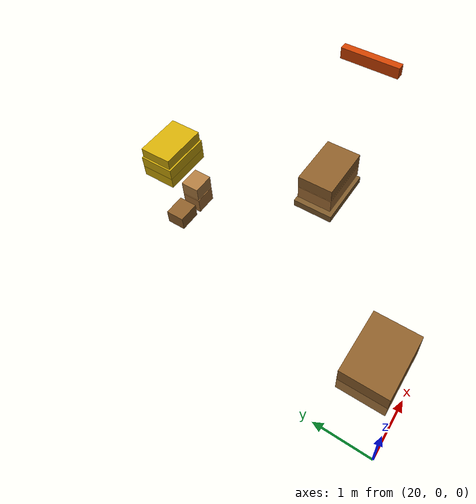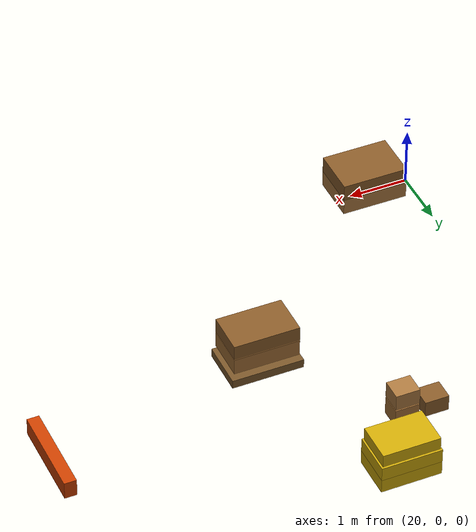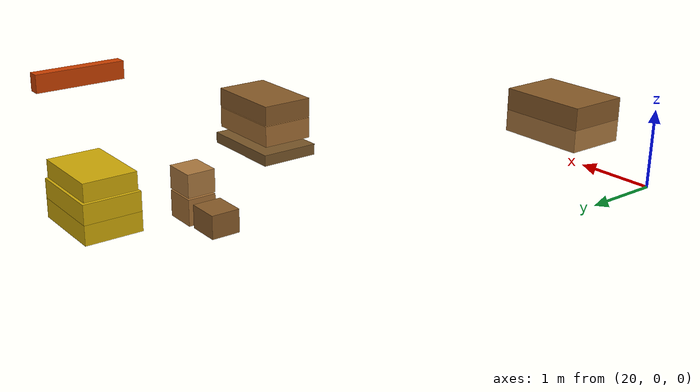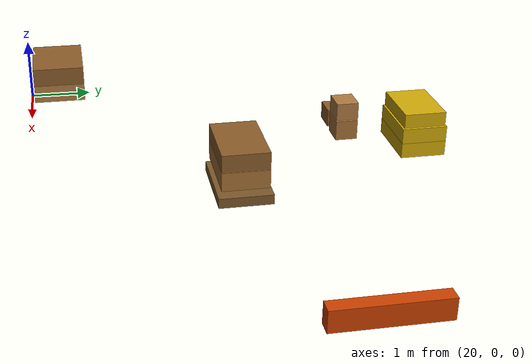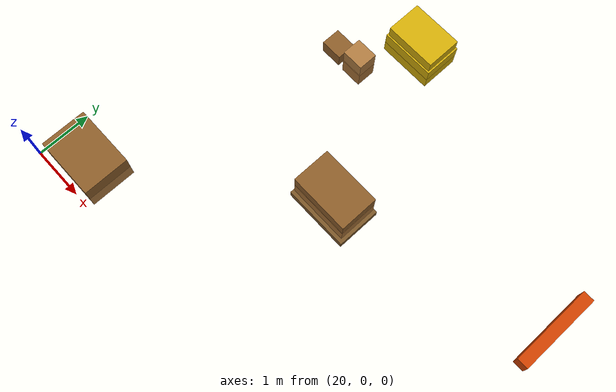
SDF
<sdf version="1.6">
 <world name="aws_industrial_warehouse">
  <model name="stk_C2">
   <static>true</static>
   <pose>21 0.5 0.65 0 0 0</pose>
   <link name="l">
    <collision name="c">
     <geometry><box><size>1.1 0.8 0.28</size></box></geometry>
     <surface><friction><ode><mu>1.0</mu><mu2>1.0</mu2></ode></friction></surface>
    </collision>
    <visual name="v">
     <geometry><box><size>1.1 0.8 0.28</size></box></geometry>
     <material><ambient>0.62 0.43 0.22 1</ambient><diffuse>0.68 0.48 0.25 1</diffuse></material>
    </visual>
   </link>
  </model>
  <model name="stk_C3">
   <static>true</static>
   <pose>21 0.5 0.93 0 0 0</pose>
   <link name="l">
    <collision name="c">
     <geometry><box><size>1.1 0.8 0.28</size></box></geometry>
     <surface><friction><ode><mu>1.0</mu><mu2>1.0</mu2></ode></friction></surface>
    </collision>
    <visual name="v">
     <geometry><box><size>1.1 0.8 0.28</size></box></geometry>
     <material><ambient>0.48 0.30 0.12 1</ambient><diffuse>0.54 0.36 0.16 1</diffuse></material>
    </visual>
   </link>
  </model>
  <model name="pal_E">
   <static>true</static>
   <pose>24 3 0.075 0 0 0</pose>
   <link name="l">
    <collision name="c">
     <geometry><box><size>1.2 0.8 0.15</size></box></geometry>
     <surface><friction><ode><mu>1.0</mu><mu2>1.0</mu2></ode></friction></surface>
    </collision>
    <visual name="v">
     <geometry><box><size>1.2 0.8 0.15</size></box></geometry>
     <material><ambient>0.42 0.28 0.12 1</ambient><diffuse>0.48 0.34 0.16 1</diffuse></material>
    </visual>
   </link>
  </model>
  <model name="stk_E1">
   <static>true</static>
   <pose>24 3 0.38 0 0 0</pose>
   <link name="l">
    <collision name="c">
     <geometry><box><size>1.1 0.7 0.28</size></box></geometry>
     <surface><friction><ode><mu>1.0</mu><mu2>1.0</mu2></ode></friction></surface>
    </collision>
    <visual name="v">
     <geometry><box><size>1.1 0.7 0.28</size></box></geometry>
     <material><ambient>0.58 0.38 0.18 1</ambient><diffuse>0.65 0.44 0.21 1</diffuse></material>
    </visual>
   </link>
  </model>
  <model name="stk_E2">
   <static>true</static>
   <pose>24 3 0.66 0 0 0</pose>
   <link name="l">
    <collision name="c">
     <geometry><box><size>1.1 0.7 0.26</size></box></geometry>
     <surface><friction><ode><mu>1.0</mu><mu2>1.0</mu2></ode></friction></surface>
    </collision>
    <visual name="v">
     <geometry><box><size>1.1 0.7 0.26</size></box></geometry>
     <material><ambient>0.48 0.30 0.12 1</ambient><diffuse>0.54 0.36 0.16 1</diffuse></material>
    </visual>
   </link>
  </model>
  <model name="loose1">
   <static>true</static>
   <pose>22.5 5 0.16 0 0 0</pose>
   <link name="l">
    <collision name="c">
     <geometry><box><size>0.4 0.35 0.32</size></box></geometry>
     <surface><friction><ode><mu>1.0</mu><mu2>1.0</mu2></ode></friction></surface>
    </collision>
    <visual name="v">
     <geometry><box><size>0.4 0.35 0.32</size></box></geometry>
     <material><ambient>0.58 0.38 0.18 1</ambient><diffuse>0.65 0.44 0.21 1</diffuse></material>
    </visual>
   </link>
  </model>
  <model name="loose2">
   <static>true</static>
   <pose>22.0 5 0.16 0 0 0</pose>
   <link name="l">
    <collision name="c">
     <geometry><box><size>0.4 0.35 0.28</size></box></geometry>
     <surface><friction><ode><mu>1.0</mu><mu2>1.0</mu2></ode></friction></surface>
    </collision>
    <visual name="v">
     <geometry><box><size>0.4 0.35 0.28</size></box></geometry>
     <material><ambient>0.48 0.30 0.12 1</ambient><diffuse>0.54 0.36 0.16 1</diffuse></material>
    </visual>
   </link>
  </model>
  <model name="loose3">
   <static>true</static>
   <pose>22.5 5 0.48 0 0 0</pose>
   <link name="l">
    <collision name="c">
     <geometry><box><size>0.4 0.35 0.28</size></box></geometry>
     <surface><friction><ode><mu>1.0</mu><mu2>1.0</mu2></ode></friction></surface>
    </collision>
    <visual name="v">
     <geometry><box><size>0.4 0.35 0.28</size></box></geometry>
     <material><ambient>0.62 0.43 0.22 1</ambient><diffuse>0.68 0.48 0.25 1</diffuse></material>
    </visual>
   </link>
  </model>
  <model name="ypk_A1">
   <static>true</static>
   <pose>23 6 0.12 0 0 0</pose>
   <link name="l">
    <collision name="c">
     <geometry><box><size>1.0 0.7 0.24</size></box></geometry>
     <surface><friction><ode><mu>1.0</mu><mu2>1.0</mu2></ode></friction></surface>
    </collision>
    <visual name="v">
     <geometry><box><size>1.0 0.7 0.24</size></box></geometry>
     <material><ambient>0.70 0.55 0.02 1</ambient><diffuse>0.82 0.67 0.03 1</diffuse></material>
    </visual>
   </link>
  </model>
  <model name="ypk_A2">
   <static>true</static>
   <pose>23 6 0.36 0 0 0</pose>
   <link name="l">
    <collision name="c">
     <geometry><box><size>1.0 0.7 0.24</size></box></geometry>
     <surface><friction><ode><mu>1.0</mu><mu2>1.0</mu2></ode></friction></surface>
    </collision>
    <visual name="v">
     <geometry><box><size>1.0 0.7 0.24</size></box></geometry>
     <material><ambient>0.70 0.55 0.02 1</ambient><diffuse>0.82 0.67 0.03 1</diffuse></material>
    </visual>
   </link>
  </model>
  <model name="ypk_A3">
   <static>true</static>
   <pose>23 6 0.6 0 0 0</pose>
   <link name="l">
    <collision name="c">
     <geometry><box><size>0.95 0.65 0.22</size></box></geometry>
     <surface><friction><ode><mu>1.0</mu><mu2>1.0</mu2></ode></friction></surface>
    </collision>
    <visual name="v">
     <geometry><box><size>0.95 0.65 0.22</size></box></geometry>
     <material><ambient>0.70 0.55 0.02 1</ambient><diffuse>0.82 0.67 0.03 1</diffuse></material>
    </visual>
   </link>
  </model>
  <model name="dock_bumper_N">
   <static>true</static>
   <pose>27.8 4 0.35 0 0 0</pose>
   <link name="l">
    <collision name="c">
     <geometry><box><size>0.2 1.5 0.3</size></box></geometry>
     <surface><friction><ode><mu>1.0</mu><mu2>1.0</mu2></ode></friction></surface>
    </collision>
    <visual name="v">
     <geometry><box><size>0.2 1.5 0.3</size></box></geometry>
     <material><ambient>0.70 0.20 0.0 1</ambient><diffuse>0.80 0.25 0.0 1</diffuse></material>
    </visual>
   </link>
  </model>
 </world>
</sdf>
